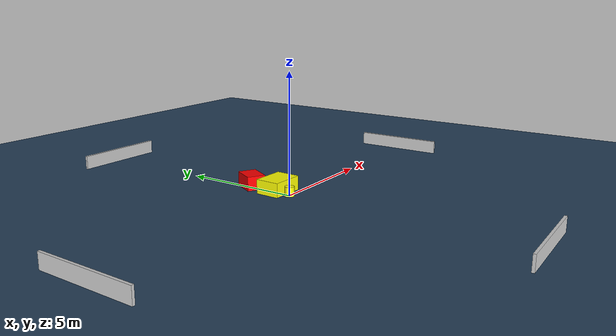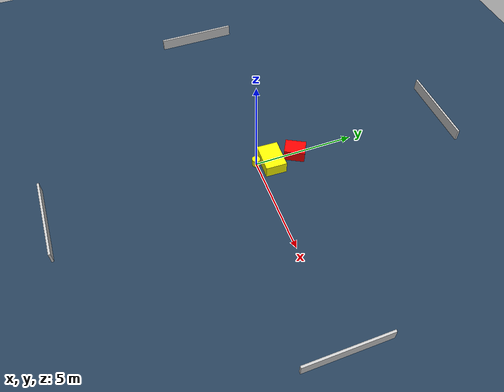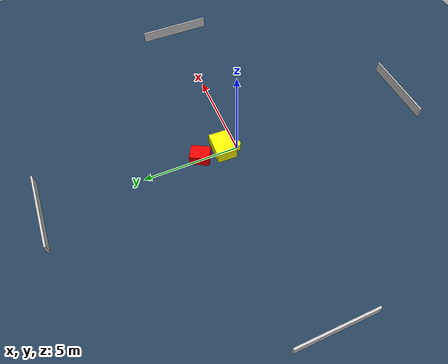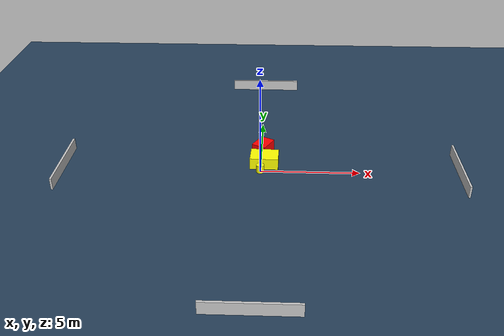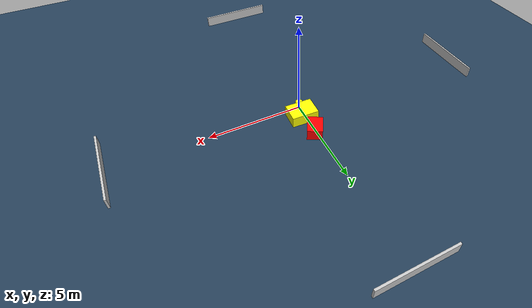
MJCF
<?xml version="1.0" ?>
<mujoco model="generated_environment">
  <option timestep="0.01" integrator="RK4" cone="elliptic"/>
  <default>
    <geom density="1"/>
  </default>
  <asset>
    <texture builtin="gradient" height="3072" name="skybox" rgb1="0.3 0.5 0.7" rgb2="0 0 0" type="skybox" width="512"/>
    <texture builtin="checker" height="300" name="groundplane" rgb1="0.2 0.3 0.4" rgb2="0.1 0.2 0.3" type="2d" width="300"/>
    <material name="groundplane" reflectance="0.2" texrepeat="5 5" texture="groundplane"/>
  </asset>
  <worldbody>
    <light dir="0 0 -1" directional="true" pos="0 0 1.5"/>
    <geom condim="3" friction="0.5 0.005 0.001" material="groundplane" name="floor" pos="0 0 0" size="0 0 0.05" type="plane"/>
    <body name="walls">
      <geom name="wall_1" condim="4" pos="-10.0 0.0 0.3" rgba="0.800000011920929 0.800000011920929 0.800000011920929 1.0" size="0.05 2.0 0.3" type="box"/>
      <geom name="wall_2" condim="4" pos="10.0 0.0 0.3" rgba="0.800000011920929 0.800000011920929 0.800000011920929 1.0" size="0.05 2.0 0.3" type="box"/>
      <geom name="wall_3" condim="4" pos="0.0 -10.0 0.3" rgba="0.800000011920929 0.800000011920929 0.800000011920929 1.0" size="2.0 0.05 0.3" type="box"/>
      <geom name="wall_4" condim="4" pos="0.0 10.0 0.3" rgba="0.800000011920929 0.800000011920929 0.800000011920929 1.0" size="2.0 0.05 0.3" type="box"/>
    </body>
    <body name="robot">
      <joint name="joint_x" type="slide" pos="0 0 0" axis="1 0 0"/>
      <joint name="joint_y" type="slide" pos="0 0 0" axis="0 1 0"/>
      <geom name="robot" type="cylinder" pos="0.0 0.0 0.2" size="0.2 0.2 0.0" mass="5.0" friction="1.0 0.005 0.0001" condim="4" rgba="1.0 1.0 0.0 1.0"/>
    </body>
    <body name="obstacle_1_movable">
      <geom name="obstacle_1_movable" condim="4" pos="0.19659492368590414 0.7218901877265838 0.3" euler="0 0 178.07636130381613" friction="0.0 0.005 0.001" rgba="1.0 1.0 0.0 1.0" size="0.7143710363518698 0.5154907470353556 0.3" type="box" mass="0.1"/>
      <joint type="free"/>
    </body>
    <body name="obstacle_2_static">
      <geom name="obstacle_2_static" condim="4" pos="0.09243480707959094 1.9877652884199428 0.3" euler="0 0 241.21687548106553" friction="0.0 0.005 0.001" rgba="1.0 0.0 0.0 1.0" size="0.5045750827322422 0.3873712277967325 0.3" type="box"/>
    </body>
  </worldbody>
  <actuator>
    <motor name="actuator_x" joint="joint_x" gear="1" ctrlrange="-1 1"/>
    <motor name="actuator_y" joint="joint_y" gear="1" ctrlrange="-1 1"/>
  </actuator>
</mujoco>
